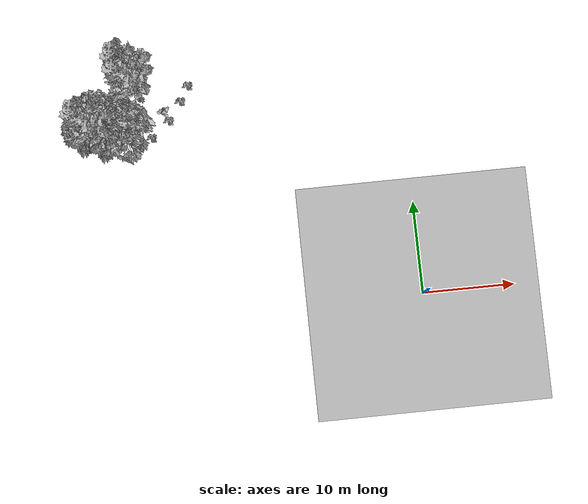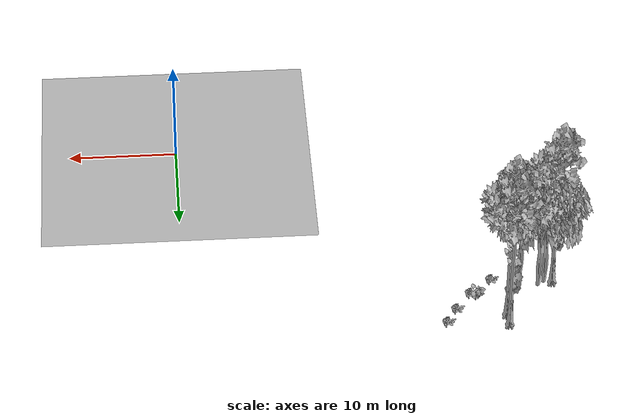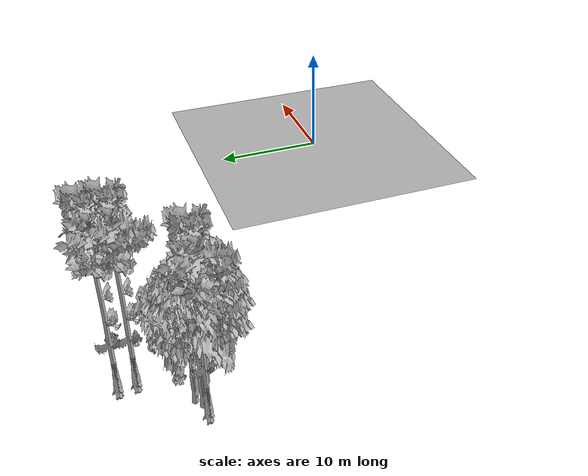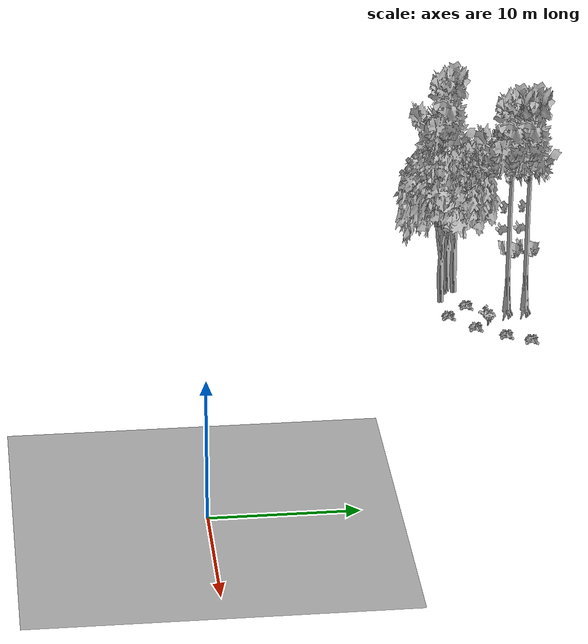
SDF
<sdf version="1.7">
 <world name="default">
  <model name="ground_plane">
   <static>1</static>
   <link name="link">
    <collision name="collision">
     <pose>-50 0 0 0 -0 0</pose>
     <geometry><plane><normal>0 0 1</normal><size>80 80</size></plane></geometry>
     <surface><contact><ode><min_depth>0.01</min_depth><max_vel>0</max_vel></ode></contact></surface>
    </collision>
    <visual name="grass">
     <cast_shadows>0</cast_shadows>
     <geometry>
      <mesh>
       <scale>0.46714285714285714 0.46714285714285714 0.1</scale>
       <uri>file://grass_plane/meshes/grass_plane.dae</uri>
      </mesh>
     </geometry>
    </visual>
   </link>
  </model>
  <model name="Tree 38">
   <static>1</static>
   <pose>-31.723911646700447 20.76167850287643 0 1.57079 -0 0</pose>
   <link name="link">
    <collision name="collision">
     <geometry><mesh><scale>3.5 5 3.5</scale><uri>model://tree_2/meshes/tree_2.obj</uri></mesh></geometry>
    </collision>
    <visual name="visual">
     <geometry><mesh><scale>3.5 5 3.5</scale><uri>model://tree_2/meshes/tree_2.obj</uri></mesh></geometry>
    </visual>
   </link>
  </model>
  <model name="Tree 77">
   <static>1</static>
   <pose>-32.29685084325424 20.34823423324862 0 1.57079 -0 0</pose>
   <link name="link">
    <collision name="collision">
     <geometry><mesh><scale>3.5 5 3.5</scale><uri>model://tree_2/meshes/tree_2.obj</uri></mesh></geometry>
    </collision>
    <visual name="visual">
     <geometry><mesh><scale>3.5 5 3.5</scale><uri>model://tree_2/meshes/tree_2.obj</uri></mesh></geometry>
    </visual>
   </link>
  </model>
  <model name="Tree 202">
   <static>1</static>
   <pose>-32.98929948353314 20.192368424064426 0 1.57079 -0 0</pose>
   <link name="link">
    <collision name="collision">
     <geometry><mesh><scale>3.5 5 3.5</scale><uri>model://tree_9/meshes/tree_9.obj</uri></mesh></geometry>
    </collision>
    <visual name="visual">
     <geometry><mesh><scale>3.5 5 3.5</scale><uri>model://tree_9/meshes/tree_9.obj</uri></mesh></geometry>
    </visual>
   </link>
  </model>
  <model name="Tree 275">
   <static>1</static>
   <pose>-28.44429174110159 24.26224016724798 0 1.57079 -0 0</pose>
   <link name="link">
    <collision name="collision">
     <geometry><mesh><scale>3.5 5 3.5</scale><uri>model://tree_9/meshes/tree_9.obj</uri></mesh></geometry>
    </collision>
    <visual name="visual">
     <geometry><mesh><scale>3.5 5 3.5</scale><uri>model://tree_9/meshes/tree_9.obj</uri></mesh></geometry>
    </visual>
   </link>
  </model>
  <model name="Tree 327">
   <static>1</static>
   <pose>-30.197735849155677 19.585825862606107 0 1.57079 -0 0</pose>
   <link name="link">
    <collision name="collision">
     <geometry><mesh><scale>3.5 5 3.5</scale><uri>model://tree_2/meshes/tree_2.obj</uri></mesh></geometry>
    </collision>
    <visual name="visual">
     <geometry><mesh><scale>3.5 5 3.5</scale><uri>model://tree_2/meshes/tree_2.obj</uri></mesh></geometry>
    </visual>
   </link>
  </model>
  <model name="Tree 602">
   <static>1</static>
   <pose>-28.53245411673814 25.58590826447191 0 1.57079 -0 0</pose>
   <link name="link">
    <collision name="collision">
     <geometry><mesh><scale>3.5 5 3.5</scale><uri>model://tree_9/meshes/tree_9.obj</uri></mesh></geometry>
    </collision>
    <visual name="visual">
     <geometry><mesh><scale>3.5 5 3.5</scale><uri>model://tree_9/meshes/tree_9.obj</uri></mesh></geometry>
    </visual>
   </link>
  </model>
  <model name="Bush 118">
   <static>1</static>
   <pose>-25.575678316359912 21.525428052835743 0 1.57079 -0 0</pose>
   <link name="link">
    <collision name="collision">
     <geometry><mesh><scale>2 2 2</scale><uri>model://bush_2/meshes/bush_2.obj</uri></mesh></geometry>
     <surface><contact><collide_without_contact>false</collide_without_contact></contact></surface>
    </collision>
    <visual name="visual">
     <geometry><mesh><scale>2 2 2</scale><uri>model://bush_2/meshes/bush_2.obj</uri></mesh></geometry>
    </visual>
   </link>
  </model>
  <model name="Bush 207">
   <static>1</static>
   <pose>-25.87607795598738 22.48036665915248 0 1.57079 -0 0</pose>
   <link name="link">
    <collision name="collision">
     <geometry><mesh><scale>2 2 2</scale><uri>model://bush_0/meshes/bush_0.obj</uri></mesh></geometry>
     <surface><contact><collide_without_contact>false</collide_without_contact></contact></surface>
    </collision>
    <visual name="visual">
     <geometry><mesh><scale>2 2 2</scale><uri>model://bush_0/meshes/bush_0.obj</uri></mesh></geometry>
    </visual>
   </link>
  </model>
  <model name="Bush 351">
   <static>1</static>
   <pose>-29.15789624185667 21.340392363748265 0 1.57079 -0 0</pose>
   <link name="link">
    <collision name="collision">
     <geometry><mesh><scale>2 2 2</scale><uri>model://bush_2/meshes/bush_2.obj</uri></mesh></geometry>
     <surface><contact><collide_without_contact>false</collide_without_contact></contact></surface>
    </collision>
    <visual name="visual">
     <geometry><mesh><scale>2 2 2</scale><uri>model://bush_2/meshes/bush_2.obj</uri></mesh></geometry>
    </visual>
   </link>
  </model>
  <model name="Bush 485">
   <static>1</static>
   <pose>-27.588572417857975 19.816012162637513 0 1.57079 -0 0</pose>
   <link name="link">
    <collision name="collision">
     <geometry><mesh><scale>2 2 2</scale><uri>model://bush_2/meshes/bush_2.obj</uri></mesh></geometry>
     <surface><contact><collide_without_contact>false</collide_without_contact></contact></surface>
    </collision>
    <visual name="visual">
     <geometry><mesh><scale>2 2 2</scale><uri>model://bush_2/meshes/bush_2.obj</uri></mesh></geometry>
    </visual>
   </link>
  </model>
  <model name="Bush 495">
   <static>1</static>
   <pose>-24.151108529165022 23.534557410804673 0 1.57079 -0 0</pose>
   <link name="link">
    <collision name="collision">
     <geometry><mesh><scale>2 2 2</scale><uri>model://bush_2/meshes/bush_2.obj</uri></mesh></geometry>
     <surface><contact><collide_without_contact>false</collide_without_contact></contact></surface>
    </collision>
    <visual name="visual">
     <geometry><mesh><scale>2 2 2</scale><uri>model://bush_2/meshes/bush_2.obj</uri></mesh></geometry>
    </visual>
   </link>
  </model>
  <model name="Bush 500">
   <static>1</static>
   <pose>-23.198865313572608 25.201825886078467 0 1.57079 -0 0</pose>
   <link name="link">
    <collision name="collision">
     <geometry><mesh><scale>2 2 2</scale><uri>model://bush_2/meshes/bush_2.obj</uri></mesh></geometry>
     <surface><contact><collide_without_contact>false</collide_without_contact></contact></surface>
    </collision>
    <visual name="visual">
     <geometry><mesh><scale>2 2 2</scale><uri>model://bush_2/meshes/bush_2.obj</uri></mesh></geometry>
    </visual>
   </link>
  </model>
 </world>
</sdf>
